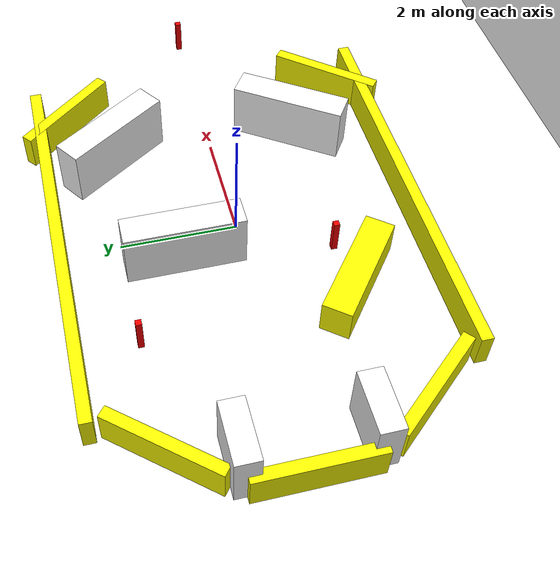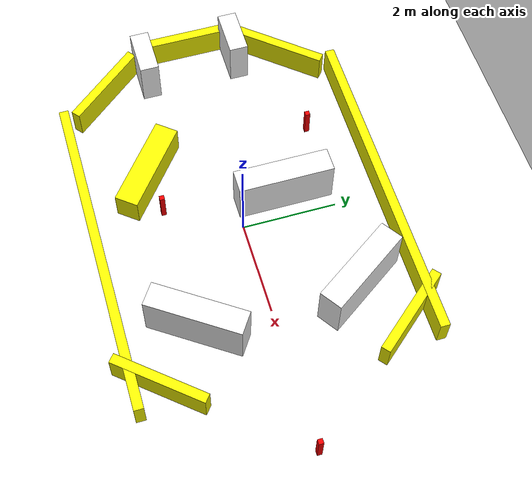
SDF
<?xml version="1.0" ?>
<sdf version="1.7">
  <world name="maze_world">
   <plugin
  filename="gz-sim-world-control-system"
  name="gz::sim::systems::WorldControl">
</plugin>
   <plugin
      filename="gz-sim-physics-system"
      name="gz::sim::systems::Physics">
    </plugin>

    <plugin
      filename="gz-sim-user-commands-system"
      name="gz::sim::systems::UserCommands">
    </plugin>

    <plugin
      filename="gz-sim-scene-broadcaster-system"
      name="gz::sim::systems::SceneBroadcaster">
    </plugin>

    <plugin
      filename="gz-sim-sensors-system"
      name="gz::sim::systems::Sensors">
      <render_engine>ogre2</render_engine>
    </plugin>
    <!-- LIGHT -->
    <light name="sun" type="directional">
      <pose>0 0 20 0 0 0</pose>
      <diffuse>1 1 1 1</diffuse>
      <direction>0 0 -1</direction>
    </light>

    <!-- GROUND -->
    <model name="ground">
      <static>true</static>
      <link name="link">
        <collision name="collision">
          <geometry>
            <plane><normal>0 0 1</normal><size>20 20</size></plane>
          </geometry>
        </collision>
        <visual name="visual">
          <geometry>
            <plane><normal>0 0 1</normal><size>20 20</size></plane>
          </geometry>
          <material>
            <ambient>1 1 1 1</ambient>
            <diffuse>1 1 1 1</diffuse>
         </material>
        </visual>
      </link>
    </model>

    <!-- ================= MAZE ================= -->
    <model name="maze">
      <static>true</static>

      <!-- ROTATE -->
      <pose>0 0 0 0 0 -1.57</pose>

      <!-- ================= BOUNDARY (SEGMENTED) ================= -->

      <!-- bottom -->
      <model name="b1">
      <static>true</static>
<pose>0 -4.8 0.1 0 0 0</pose><link name="l"><collision name="c"><geometry><box>
<size>3 0.2 1</size></box>
</geometry></collision><visual name="v"><geometry>
<box><size>2 0.2 1</size></box>
</geometry><material><ambient>1 1 0 1</ambient></material></visual></link></model>

      <!-- bottom left -->
      <model name="b2">
      <static>true</static>
<pose>-2 -4 0.1 0 0 -0.7</pose>
<link name="l"><collision name="c"><geometry>
<box><size>2 0.2 1</size></box></geometry></collision>
<visual name="v"><geometry><box><size>2 0.2 1</size></box></geometry><material><ambient>1 1 0 1</ambient></material></visual></link></model>

      <!-- bottom right -->
      <model name="b3">
      <static>true</static>
<pose>2 -4 0.1 0 0 0.7</pose>
<link name="l"><collision name="c"><geometry>
<box><size>2 0.2 1</size></box></geometry></collision>
<visual name="v"><geometry><box><size>2 0.2 1</size></box></geometry>
<material><ambient>1 1 0 1</ambient></material></visual></link></model>

      <!-- left vertical -->
      <model name="b4">
      <static>true</static>
<pose>-3 0 0.1 0 0 1.57</pose>
<link name="l"><collision name="c">
<geometry><box><size>7 0.2 1</size></box></geometry>
</collision>
<visual name="v"><geometry><box><size>7 0.2 1</size></box></geometry>
<material><ambient>1 1 0 1</ambient></material></visual></link></model>

      <!-- right vertical -->
      <model name="b5">
      <static>true</static>
<pose>3 0 0.1 0 0 1.57</pose><link name="l">
<collision name="c"><geometry><box><size>7 0.2 1</size></box></geometry></collision>
<visual name="v"><geometry><box><size>7 0.2 1</size></box></geometry><material><ambient>1 1 0 1</ambient></material></visual></link></model>

      <!-- top -->
       <model name="b7">
       <static>true</static>
<pose>-2.5 3 0.1 0 0 0.7</pose><link name="l"><collision name="c"><geometry><box>
<size>2 0.2 1</size>
</box></geometry></collision><visual name="v"><geometry><box><size>2 0.2 1</size></box></geometry><material>
<ambient>1 1 0 1</ambient></material></visual></link></model>
	<model name="b8">
	<static>true</static>
<pose>2.5 3 0.1 0 0 -0.7</pose><link name="l">
<collision name="c"><geometry><box>
<size>2 0.2 1</size></box></geometry></collision><visual name="v"><geometry><box>
<size>2 0.2 1</size></box></geometry><material><ambient>1 1 0 1</ambient></material></visual></link></model>
      <!-- ================= ENTRY ================= -->

      <model name="entry_left">
       <static>true</static>
        <pose>-1 -4.3 0.5 0 0 0</pose>
        <link name="l">
          <collision name="c"><geometry><box><size>0.4 1 1</size></box></geometry></collision>
          <visual name="v"><geometry><box><size>0.4 1 1</size></box></geometry><material><ambient>1 1 1 1</ambient></material></visual>
        </link>
      </model>

      <model name="entry_right">
      <static>true</static>
        <pose>1 -4.3 0.5 0 0 0</pose>
        <link name="l">
          <collision name="c"><geometry><box><size>0.4 1 1</size></box></geometry></collision>
          <visual name="v"><geometry><box><size>0.4 1 1</size></box></geometry><material><ambient>1 1 1 1</ambient></material></visual>
        </link>
      </model>

      <!-- ================= INNER WALLS ================= -->

      <model name="w2"><static>true</static><pose>-1 -0.5 0.5 0 0 0</pose>
<link name="l">
<collision name="c"><geometry><box>
<size>2 0.5 1</size></box></geometry></collision>
<visual name="v"><geometry><box>
<size>2 0.5 1</size></box></geometry><material><ambient>1 1 1 1</ambient></material></visual></link></model>
     <model name="w1"><static>true</static><pose>1.6 -1.7 0.1 0 0 0.9</pose><link name="l">
<collision name="c"><geometry><box>
<size>2 0.5 1</size></box></geometry></collision>
<visual name="v"><geometry><box>
<size>2 0.5 1</size></box></geometry><material><ambient>1 1 0 1</ambient></material></visual></link></model>
      <model name="w3"><static>true</static><pose>1.5 2 0.5 0 0 -0.6</pose>
<link name="l"><collision name="c"><geometry>
<box><size>2 0.5 1</size></box>
</geometry>
</collision>
<visual name="v"><geometry><box>
<size>2 0.5 1</size></box></geometry><material><ambient>1 1 1 1</ambient></material></visual></link></model>

      <model name="w4"><static>true</static><pose>-1.8 2 0.5 0 0 0.6</pose>
<link name="l"><collision name="c">
<geometry><box><size>2 0.5 1</size></box></geometry></collision>
<visual name="v"><geometry><box><size>2 0.5 1</size></box></geometry><material><ambient>1 1 1 1</ambient></material></visual></link></model>

    </model>
         <model name="o1"><static>true</static><pose>-2 2 0.1 0 0 0</pose><link name="l">
<collision name="c"><geometry><box><size>0.1 0.1 1</size></box></geometry></collision>
<visual name="v"><geometry><box><size>0.1 0.1 1</size></box></geometry>
<material><ambient>1 0 0 1</ambient>
<diffuse>1 0 0 1</diffuse></material>
</visual></link></model>
<model name="o2"><static>true</static><pose>-0.8 -1.5 0.1 0 0 0</pose><link name="l">
<collision name="c"><geometry><box><size>0.1 0.1 1</size></box></geometry></collision>
<visual name="v"><geometry><box><size>0.1 0.1 1</size></box></geometry>
<material><ambient>1 0 0 1</ambient>
<diffuse>1 0 0 1</diffuse></material>
</visual></link></model>
<model name="o3"><static>true</static><pose>5.0 0.0 0.1 0 0 0</pose><link name="l">
<collision name="c"><geometry><box><size>0.1 0.1 1</size></box></geometry></collision>
<visual name="v"><geometry><box><size>0.1 0.1 1</size></box></geometry>
<material><ambient>1 0 0 1</ambient>
<diffuse>1 0 0 1</diffuse></material>
</visual></link></model>
  </world>
</sdf>
